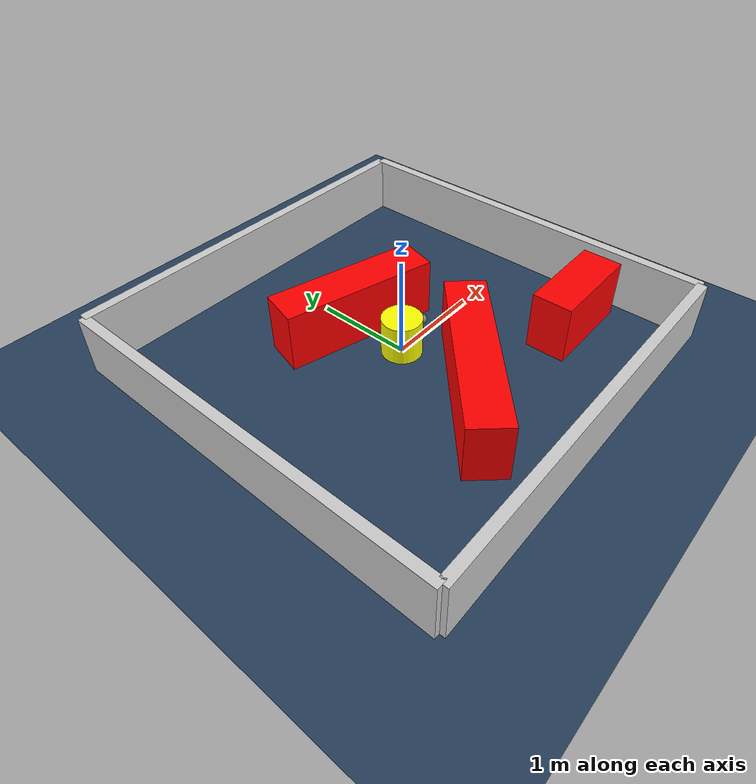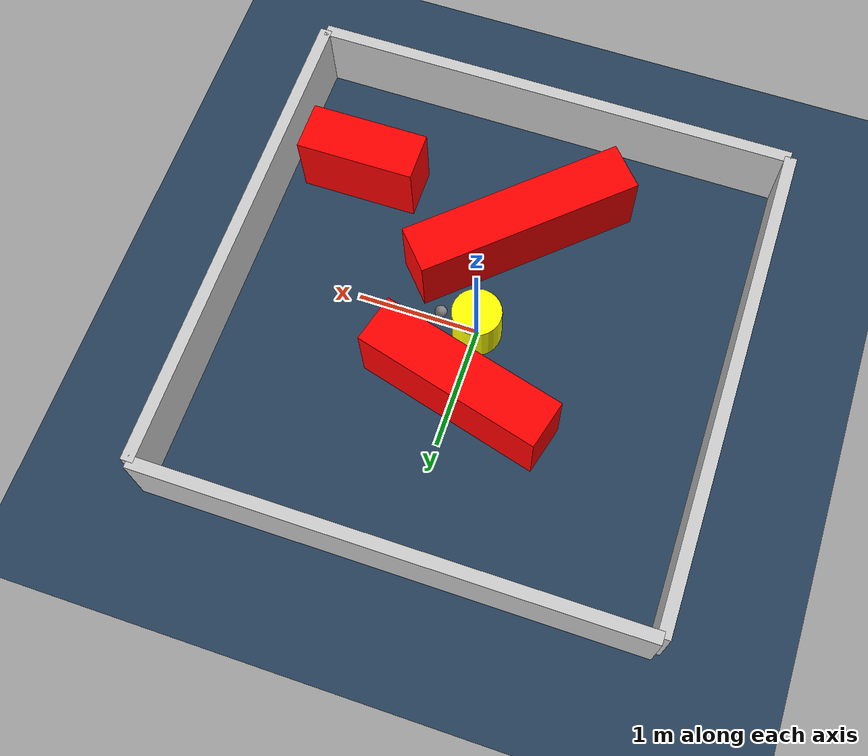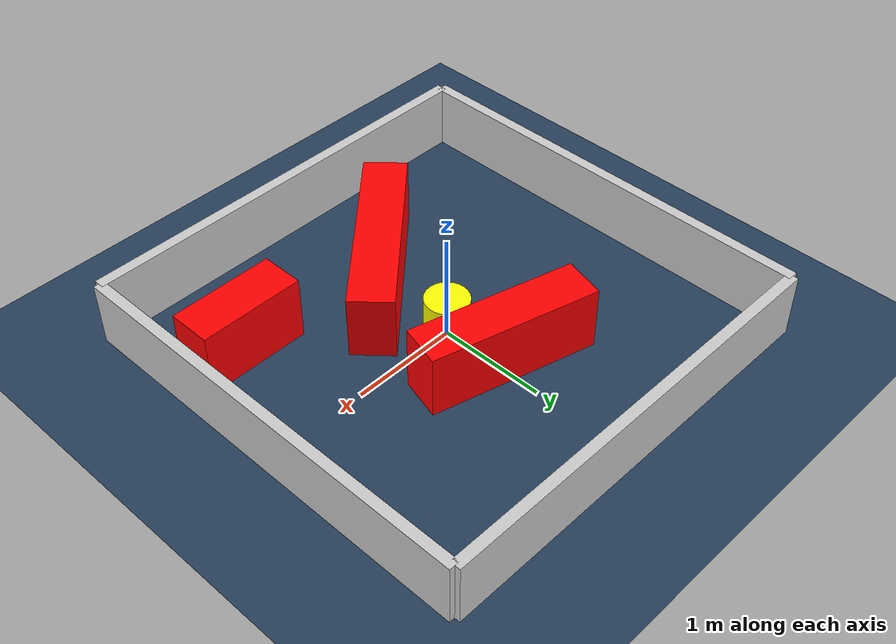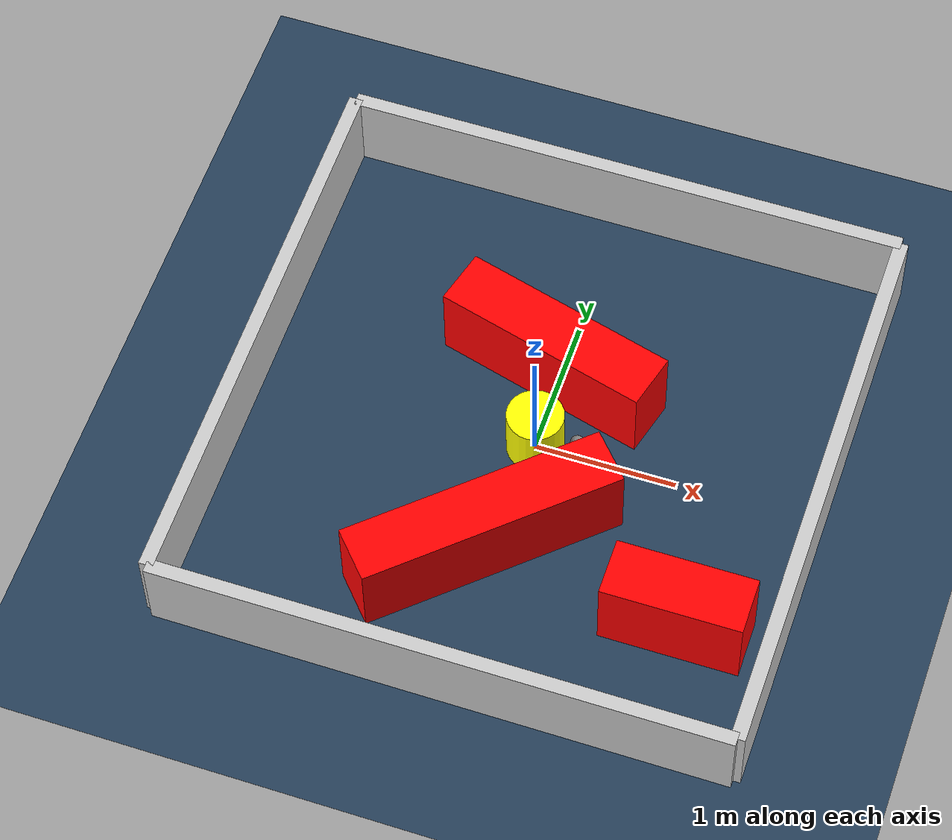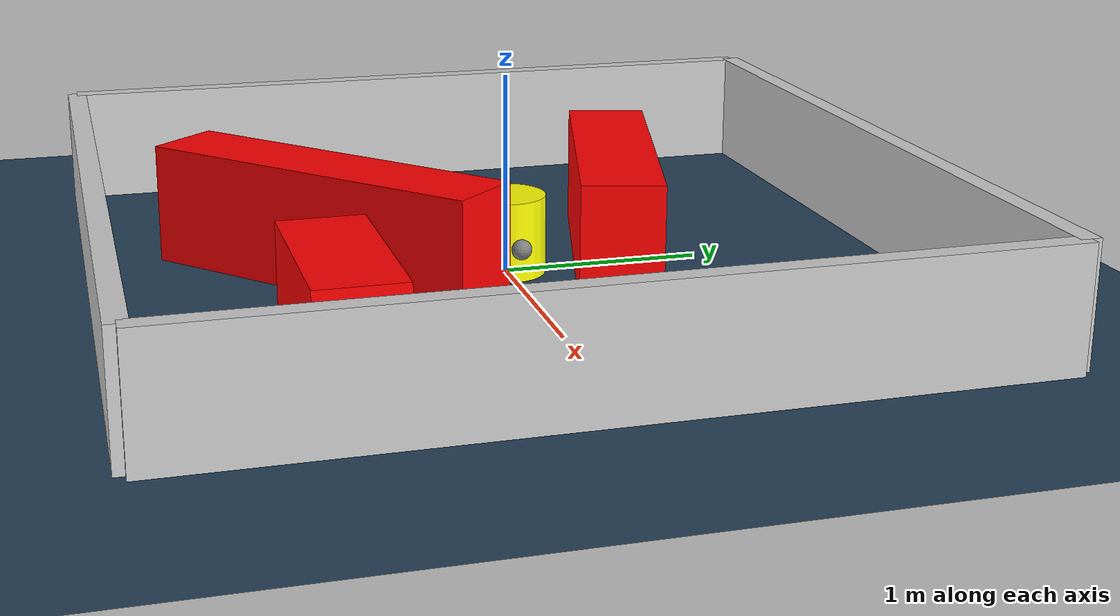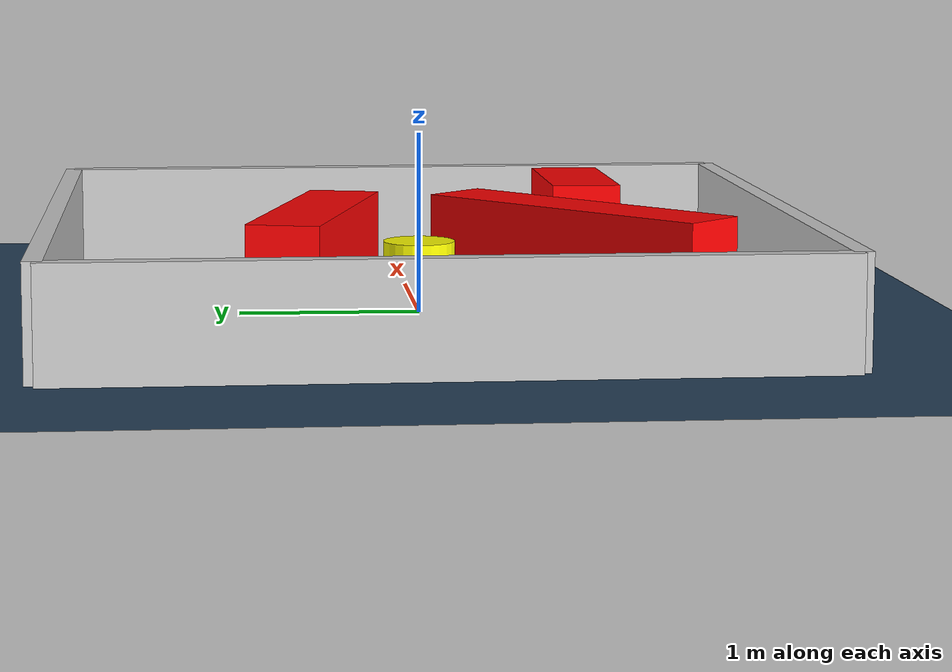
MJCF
<?xml version="1.0" ?>
<mujoco model="generated_environment">
  <option timestep="0.01" integrator="RK4" cone="elliptic"/>
  <default>
    <geom density="1"/>
  </default>
  <asset>
    <texture builtin="gradient" height="3072" rgb1="0.3 0.5 0.7" rgb2="0 0 0" type="skybox" width="512"/>
    <texture builtin="checker" height="300" mark="edge" markrgb="0.8 0.8 0.8" name="groundplane" rgb1="0.2 0.3 0.4" rgb2="0.1 0.2 0.3" type="2d" width="300"/>
    <material name="groundplane" reflectance="0.2" texrepeat="5 5" texture="groundplane" texuniform="true"/>
    <material name="robot" rgba="0.0 1.0 0.0 1"/>
  </asset>
  <worldbody>
    <light dir="0 0 -1" directional="true" pos="0 0 1.5"/>
    <geom condim="4" friction="1.0 0.005 0.001" material="groundplane" name="floor" size="0 0 0.05" type="plane"/>
    <body name="walls">
      <geom name="wall_1" condim="4" pos="-2.0 0.0 0.3" rgba="0.800000011920929 0.800000011920929 0.800000011920929 1.0" size="0.05 2.0 0.3" type="box"/>
      <geom name="wall_2" condim="4" pos="2.0 0.0 0.3" rgba="0.800000011920929 0.800000011920929 0.800000011920929 1.0" size="0.05 2.0 0.3" type="box"/>
      <geom name="wall_3" condim="4" pos="0.0 -2.0 0.3" rgba="0.800000011920929 0.800000011920929 0.800000011920929 1.0" size="2.0 0.05 0.3" type="box"/>
      <geom name="wall_4" condim="4" pos="0.0 2.0 0.3" rgba="0.800000011920929 0.800000011920929 0.800000011920929 1.0" size="2.0 0.05 0.3" type="box"/>
    </body>
    <body name="robot">
      <joint name="joint_x" type="slide" pos="0 0 0" axis="1 0 0"/>
      <joint name="joint_y" type="slide" pos="0 0 0" axis="0 1 0"/>
      <geom name="robot" type="sphere" pos="0.3 0.0 0.2" size="0.05" mass="5." friction="1.0 0.005 0.0001" condim="4" rgba="0.5 0.5 0.5 1.0"/>
      <site name="sensor_ball"/>
    </body>
    <body name="obstacle_movable_1">
      <geom name="obstacle_movable_1" condim="4" pos="0.0 0.0 0.2" euler="0 0 0.0" friction="1.0 0.005 0.001" rgba="1.0 1.0 0.0 1.0" size="0.2 0.2 0.0" type="cylinder" mass="0.1"/>
      <joint type="free"/>
    </body>
    <body name="obstacle_2_static">
      <geom name="obstacle_2_static" condim="4" pos="-0.05156465182212955 0.5812262912046069 0.3" euler="0 0 344.9518458110501" friction="1.0 0.005 0.001" rgba="1 0 0 1" size="0.7809011006296906 0.2 0.3" type="box"/>
    </body>
    <body name="obstacle_3_static">
      <geom name="obstacle_3_static" condim="4" pos="-0.07436830877840661 -0.8855909967079213 0.3" euler="0 0 42.196208676676314" friction="1.0 0.005 0.001" rgba="1 0 0 1" size="0.9346501684535828 0.2 0.3" type="box"/>
    </body>
    <body name="obstacle_4_static">
      <geom name="obstacle_4_static" condim="4" pos="1.3313879809738314 -1.063733710691356 0.3" euler="0 0 180.1782402815199" friction="1.0 0.005 0.001" rgba="1 0 0 1" size="0.4848875495305812 0.2 0.3" type="box"/>
    </body>
  </worldbody>
  <actuator>
    <motor name="actuator_x" joint="joint_x" gear="1" ctrlrange="-1 1"/>
    <motor name="actuator_y" joint="joint_y" gear="1" ctrlrange="-1 1"/>
  </actuator>
</mujoco>
